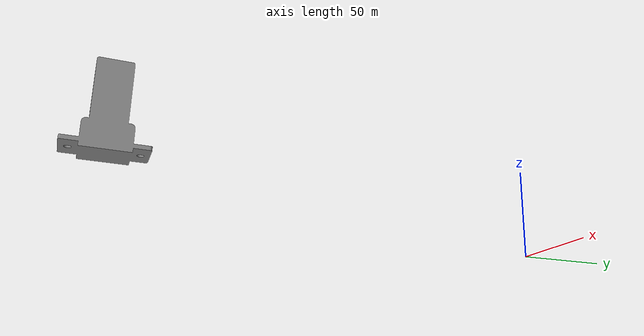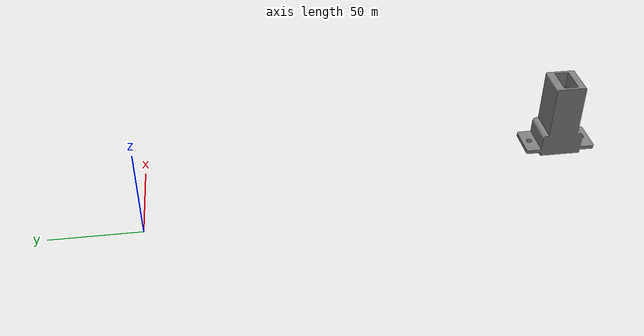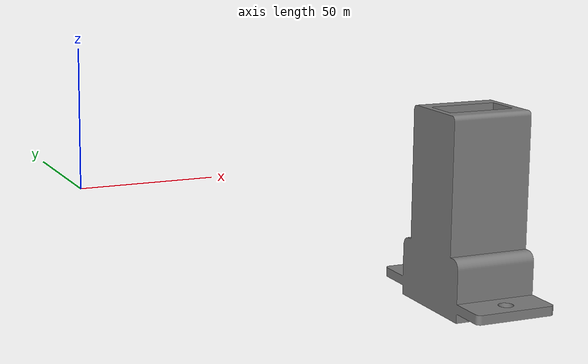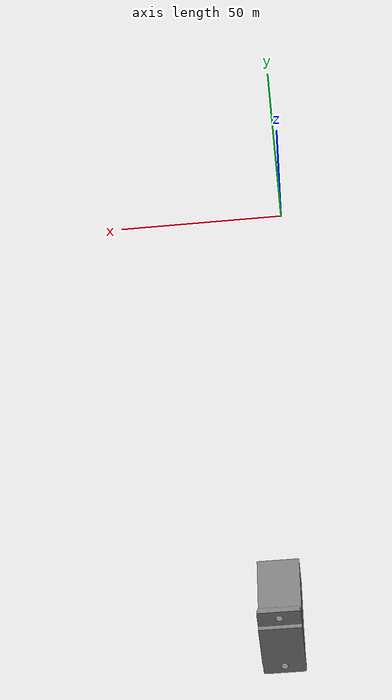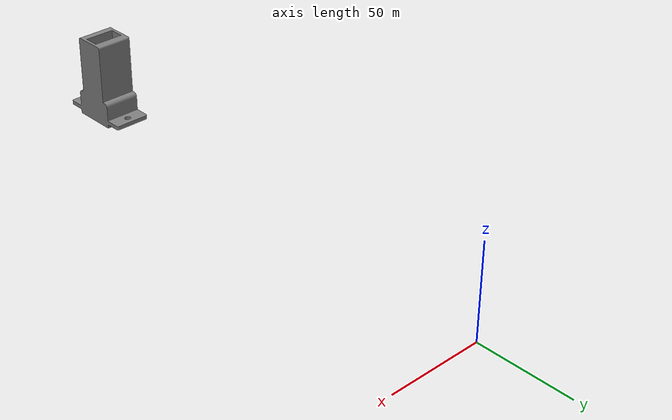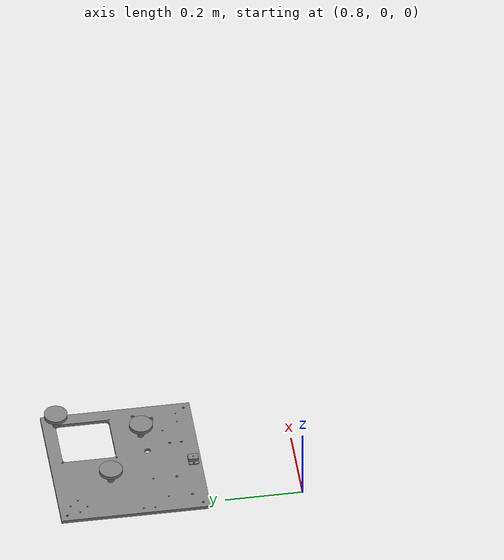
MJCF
<mujoco model="task_board">

	<compiler angle="radian" meshdir="assets" autolimits="true" />

	<asset>
		<mesh name="board"           file="IROS2020_Practice - IROS2020_Practice_Base-1.STL" scale="0.001 0.001 0.001" />
		<mesh name="cable_routing_1" file="IROS2020_Practice - Cable Routing Base-1.STL" scale="0.001 0.001 0.001" />
		<mesh name="cable_routing_2" file="IROS2020_Practice - Cable Routing Base-2.STL" scale="0.001 0.001 0.001" />
		<mesh name="usb_clamp"       file="IROS2020_Practice - USB Cable Clamp-1.STL" scale="0.001 0.001 0.001" />
		<mesh name="usb_socket"      file="IROS2020_Practice - U09-AF-AF-B_USB_Socket-1.STL"/>
		<mesh name="wire_bolt_1"     file="IROS2020_Practice - bolt for flat cable-1.STL" scale="0.001 0.001 0.001" />
		<mesh name="wire_bolt_2"     file="IROS2020_Practice - bolt for flat cable-2.STL" scale="0.001 0.001 0.001" />
		<mesh name="wire_washer_1"   file="IROS2020_Practice - Washer for wire hook-1.STL" scale="0.001 0.001 0.001" />
		<mesh name="wire_washer_2"   file="IROS2020_Practice - Washer for wire hook-2.STL" scale="0.001 0.001 0.001" />

	</asset>
	<worldbody>

		<body name="task_board" pos="0.70162832 0.63506023 0.05866477" quat="0.7071 0 0 -0.7071">
			<body name="usb_clamp" >
				<geom name="usb_clamp" type="mesh" pos="0 0 0" mesh="usb_clamp" mass="0.2" />
			</body>
			<geom name="usb_socket"                                                   type="mesh" mesh="usb_socket" mass="0.2"/>
			<geom name="board"                                                        type="mesh" mesh="board" mass="0.2"/>

			</body>

			<geom name="wire_bolt_3" solref="0.00001 1" solimp="0.9 0.95 0.001 1 0.1" type="cylinder"
				size="0.008 0.02" mass="2" pos="0.98311695 0.39026566 0.1" />

			<geom name="wire_bolt_2" solref="0.000001 1" solimp="0.9 0.95 0.001 1 0.1" type="cylinder"
				size="0.008 0.02" mass="2" pos="0.83 0.49 0.1" />

			<geom name="wire_bolt_1" solref="0.000001 1" solimp="0.9 0.95 0.001 1 0.1" type="cylinder"
				size="0.008 0.02" mass="2" pos="1.05 0.6 0.1" />

			<geom name="wire_washer_3" solref="0.000001 1" solimp="0.9 0.95 0.001 1 0.1" type="cylinder"
				size="0.03 0.005" mass="2" pos="0.98311695 0.39026566 0.11779694" />

			<geom name="wire_washer_2" solref="0.000001 1" solimp="0.9 0.95 0.001 1 0.1" type="cylinder"
				size="0.03 0.005" mass="2" pos="0.83 0.49 0.11779694" />

			<geom name="wire_washer_1" solref="0.000001 1" solimp="0.9 0.95 0.001 1 0.1" type="cylinder"
				size="0.03 0.005" mass="2" pos="1.05 0.6 0.11779694" />
	</worldbody>
</mujoco>
